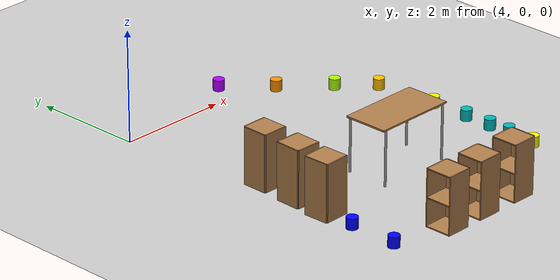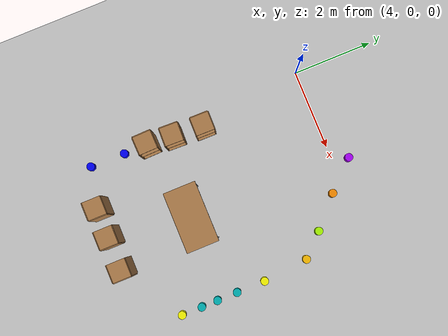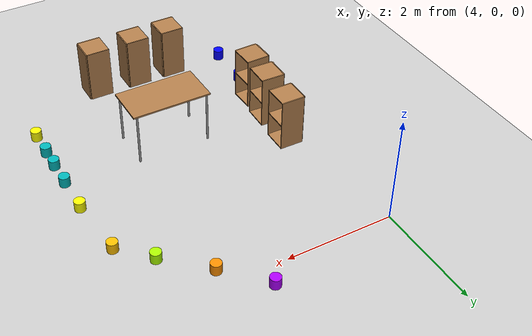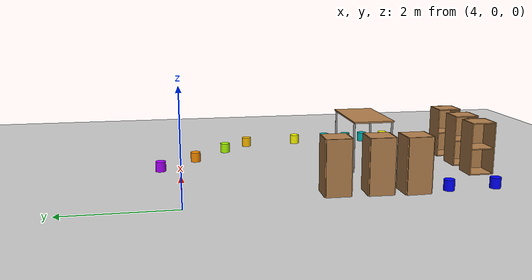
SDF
<sdf version="1.6">
 <world name="default">
  <model name="ground_plane">
   <static>1</static>
   <link name="link">
    <collision name="collision">
     <geometry><plane><normal>0 0 1</normal><size>100 100</size></plane></geometry>
     <surface>
      <contact><collide_bitmask>65535</collide_bitmask></contact>
      <friction><ode><mu>100</mu><mu2>50</mu2></ode></friction>
     </surface>
    </collision>
    <visual name="visual">
     <cast_shadows>0</cast_shadows>
     <geometry><plane><normal>0 0 1</normal><size>100 100</size></plane></geometry>
     <material>
      <script><uri>file://media/materials/scripts/gazebo.material</uri><name>Gazebo/Grey</name></script>
     </material>
    </visual>
   </link>
  </model>
  <model name="cabinet_1">
   <static>1</static>
   <link name="cabinet_bottom_plate">
    <inertial>
     <pose>0 0 -1 0 -0 0</pose>
     <inertia><ixx>2.05</ixx><ixy>0</ixy><ixz>0</ixz><iyy>2.05</iyy><iyz>0</iyz><izz>2.05</izz></inertia>
     <mass>25</mass>
    </inertial>
    <collision name="cabinet_bottom_plate_geom">
     <pose>0 0 0.01 0 -0 0</pose>
     <geometry><box><size>0.45 0.45 0.02</size></box></geometry>
    </collision>
    <visual name="cabinet_bottom_plate_geom_visual">
     <pose>0 0 0.01 0 -0 0</pose>
     <geometry><box><size>0.45 0.45 0.02</size></box></geometry>
     <material>
      <script><uri>file://media/materials/scripts/gazebo.material</uri><name>Gazebo/Wood</name></script>
     </material>
    </visual>
    <collision name="cabinet_bottom_plate_geom_cabinet_back_plate">
     <pose>0.235 0 0.51 0 -0 0</pose>
     <geometry><box><size>0.02 0.45 1.02</size></box></geometry>
    </collision>
    <visual name="cabinet_bottom_plate_geom_cabinet_back_plate_visual">
     <pose>0.235 0 0.51 0 -0 0</pose>
     <geometry><box><size>0.02 0.45 1.02</size></box></geometry>
     <material>
      <script><uri>file://media/materials/scripts/gazebo.material</uri><name>Gazebo/Wood</name></script>
     </material>
    </visual>
    <collision name="cabinet_bottom_plate_geom_cabinet_left_plate">
     <pose>0 0.235 0.51 0 -0 0</pose>
     <geometry><box><size>0.45 0.02 1.02</size></box></geometry>
    </collision>
    <visual name="cabinet_bottom_plate_geom_cabinet_left_plate_visual">
     <pose>0 0.235 0.51 0 -0 0</pose>
     <geometry><box><size>0.45 0.02 1.02</size></box></geometry>
     <material>
      <script><uri>file://media/materials/scripts/gazebo.material</uri><name>Gazebo/Wood</name></script>
     </material>
    </visual>
    <collision name="cabinet_bottom_plate_geom_cabinet_middle_plate">
     <pose>0 0 0.51 0 -0 0</pose>
     <geometry><box><size>0.45 0.45 0.02</size></box></geometry>
    </collision>
    <visual name="cabinet_bottom_plate_geom_cabinet_middle_plate_visual">
     <pose>0 0 0.51 0 -0 0</pose>
     <geometry><box><size>0.45 0.45 0.02</size></box></geometry>
     <material>
      <script><uri>file://media/materials/scripts/gazebo.material</uri><name>Gazebo/Wood</name></script>
     </material>
    </visual>
    <collision name="cabinet_bottom_plate_geom_cabinet_right_plate">
     <pose>0 -0.235 0.51 0 -0 0</pose>
     <geometry><box><size>0.45 0.02 1.02</size></box></geometry>
    </collision>
    <visual name="cabinet_bottom_plate_geom_cabinet_right_plate_visual">
     <pose>0 -0.235 0.51 0 -0 0</pose>
     <geometry><box><size>0.45 0.02 1.02</size></box></geometry>
     <material>
      <script><uri>file://media/materials/scripts/gazebo.material</uri><name>Gazebo/Wood</name></script>
     </material>
    </visual>
    <collision name="cabinet_bottom_plate_geom_cabinet_top_plate">
     <pose>0 0 1.01 0 -0 0</pose>
     <geometry><box><size>0.45 0.45 0.02</size></box></geometry>
    </collision>
    <visual name="cabinet_bottom_plate_geom_cabinet_top_plate_visual">
     <pose>0 0 1.01 0 -0 0</pose>
     <geometry><box><size>0.45 0.45 0.02</size></box></geometry>
     <material>
      <script><uri>file://media/materials/scripts/gazebo.material</uri><name>Gazebo/Wood</name></script>
     </material>
    </visual>
   </link>
   <pose>6.0489 -5.7218 0 0 -0 0</pose>
  </model>
  <model name="cabinet_2">
   <static>1</static>
   <link name="cabinet_bottom_plate">
    <inertial>
     <pose>0 0 -1 0 -0 0</pose>
     <inertia><ixx>2.05</ixx><ixy>0</ixy><ixz>0</ixz><iyy>2.05</iyy><iyz>0</iyz><izz>2.05</izz></inertia>
     <mass>25</mass>
    </inertial>
    <collision name="cabinet_bottom_plate_geom">
     <pose>0 0 0.01 0 -0 0</pose>
     <geometry><box><size>0.45 0.45 0.02</size></box></geometry>
    </collision>
    <visual name="cabinet_bottom_plate_geom_visual">
     <pose>0 0 0.01 0 -0 0</pose>
     <geometry><box><size>0.45 0.45 0.02</size></box></geometry>
     <material>
      <script><uri>file://media/materials/scripts/gazebo.material</uri><name>Gazebo/Wood</name></script>
     </material>
    </visual>
    <collision name="cabinet_bottom_plate_geom_cabinet_back_plate">
     <pose>0.235 0 0.51 0 -0 0</pose>
     <geometry><box><size>0.02 0.45 1.02</size></box></geometry>
    </collision>
    <visual name="cabinet_bottom_plate_geom_cabinet_back_plate_visual">
     <pose>0.235 0 0.51 0 -0 0</pose>
     <geometry><box><size>0.02 0.45 1.02</size></box></geometry>
     <material>
      <script><uri>file://media/materials/scripts/gazebo.material</uri><name>Gazebo/Wood</name></script>
     </material>
    </visual>
    <collision name="cabinet_bottom_plate_geom_cabinet_left_plate">
     <pose>0 0.235 0.51 0 -0 0</pose>
     <geometry><box><size>0.45 0.02 1.02</size></box></geometry>
    </collision>
    <visual name="cabinet_bottom_plate_geom_cabinet_left_plate_visual">
     <pose>0 0.235 0.51 0 -0 0</pose>
     <geometry><box><size>0.45 0.02 1.02</size></box></geometry>
     <material>
      <script><uri>file://media/materials/scripts/gazebo.material</uri><name>Gazebo/Wood</name></script>
     </material>
    </visual>
    <collision name="cabinet_bottom_plate_geom_cabinet_middle_plate">
     <pose>0 0 0.51 0 -0 0</pose>
     <geometry><box><size>0.45 0.45 0.02</size></box></geometry>
    </collision>
    <visual name="cabinet_bottom_plate_geom_cabinet_middle_plate_visual">
     <pose>0 0 0.51 0 -0 0</pose>
     <geometry><box><size>0.45 0.45 0.02</size></box></geometry>
     <material>
      <script><uri>file://media/materials/scripts/gazebo.material</uri><name>Gazebo/Wood</name></script>
     </material>
    </visual>
    <collision name="cabinet_bottom_plate_geom_cabinet_right_plate">
     <pose>0 -0.235 0.51 0 -0 0</pose>
     <geometry><box><size>0.45 0.02 1.02</size></box></geometry>
    </collision>
    <visual name="cabinet_bottom_plate_geom_cabinet_right_plate_visual">
     <pose>0 -0.235 0.51 0 -0 0</pose>
     <geometry><box><size>0.45 0.02 1.02</size></box></geometry>
     <material>
      <script><uri>file://media/materials/scripts/gazebo.material</uri><name>Gazebo/Wood</name></script>
     </material>
    </visual>
    <collision name="cabinet_bottom_plate_geom_cabinet_top_plate">
     <pose>0 0 1.01 0 -0 0</pose>
     <geometry><box><size>0.45 0.45 0.02</size></box></geometry>
    </collision>
    <visual name="cabinet_bottom_plate_geom_cabinet_top_plate_visual">
     <pose>0 0 1.01 0 -0 0</pose>
     <geometry><box><size>0.45 0.45 0.02</size></box></geometry>
     <material>
      <script><uri>file://media/materials/scripts/gazebo.material</uri><name>Gazebo/Wood</name></script>
     </material>
    </visual>
   </link>
   <pose>6.87126 -5.72446 0 0 -0 0</pose>
  </model>
  <model name="cabinet_3">
   <static>1</static>
   <link name="cabinet_bottom_plate">
    <inertial>
     <pose>0 0 -1 0 -0 0</pose>
     <inertia><ixx>2.05</ixx><ixy>0</ixy><ixz>0</ixz><iyy>2.05</iyy><iyz>0</iyz><izz>2.05</izz></inertia>
     <mass>25</mass>
    </inertial>
    <collision name="cabinet_bottom_plate_geom">
     <pose>0 0 0.01 0 -0 0</pose>
     <geometry><box><size>0.45 0.45 0.02</size></box></geometry>
    </collision>
    <visual name="cabinet_bottom_plate_geom_visual">
     <pose>0 0 0.01 0 -0 0</pose>
     <geometry><box><size>0.45 0.45 0.02</size></box></geometry>
     <material>
      <script><uri>file://media/materials/scripts/gazebo.material</uri><name>Gazebo/Wood</name></script>
     </material>
    </visual>
    <collision name="cabinet_bottom_plate_geom_cabinet_back_plate">
     <pose>0.235 0 0.51 0 -0 0</pose>
     <geometry><box><size>0.02 0.45 1.02</size></box></geometry>
    </collision>
    <visual name="cabinet_bottom_plate_geom_cabinet_back_plate_visual">
     <pose>0.235 0 0.51 0 -0 0</pose>
     <geometry><box><size>0.02 0.45 1.02</size></box></geometry>
     <material>
      <script><uri>file://media/materials/scripts/gazebo.material</uri><name>Gazebo/Wood</name></script>
     </material>
    </visual>
    <collision name="cabinet_bottom_plate_geom_cabinet_left_plate">
     <pose>0 0.235 0.51 0 -0 0</pose>
     <geometry><box><size>0.45 0.02 1.02</size></box></geometry>
    </collision>
    <visual name="cabinet_bottom_plate_geom_cabinet_left_plate_visual">
     <pose>0 0.235 0.51 0 -0 0</pose>
     <geometry><box><size>0.45 0.02 1.02</size></box></geometry>
     <material>
      <script><uri>file://media/materials/scripts/gazebo.material</uri><name>Gazebo/Wood</name></script>
     </material>
    </visual>
    <collision name="cabinet_bottom_plate_geom_cabinet_middle_plate">
     <pose>0 0 0.51 0 -0 0</pose>
     <geometry><box><size>0.45 0.45 0.02</size></box></geometry>
    </collision>
    <visual name="cabinet_bottom_plate_geom_cabinet_middle_plate_visual">
     <pose>0 0 0.51 0 -0 0</pose>
     <geometry><box><size>0.45 0.45 0.02</size></box></geometry>
     <material>
      <script><uri>file://media/materials/scripts/gazebo.material</uri><name>Gazebo/Wood</name></script>
     </material>
    </visual>
    <collision name="cabinet_bottom_plate_geom_cabinet_right_plate">
     <pose>0 -0.235 0.51 0 -0 0</pose>
     <geometry><box><size>0.45 0.02 1.02</size></box></geometry>
    </collision>
    <visual name="cabinet_bottom_plate_geom_cabinet_right_plate_visual">
     <pose>0 -0.235 0.51 0 -0 0</pose>
     <geometry><box><size>0.45 0.02 1.02</size></box></geometry>
     <material>
      <script><uri>file://media/materials/scripts/gazebo.material</uri><name>Gazebo/Wood</name></script>
     </material>
    </visual>
    <collision name="cabinet_bottom_plate_geom_cabinet_top_plate">
     <pose>0 0 1.01 0 -0 0</pose>
     <geometry><box><size>0.45 0.45 0.02</size></box></geometry>
    </collision>
    <visual name="cabinet_bottom_plate_geom_cabinet_top_plate_visual">
     <pose>0 0 1.01 0 -0 0</pose>
     <geometry><box><size>0.45 0.45 0.02</size></box></geometry>
     <material>
      <script><uri>file://media/materials/scripts/gazebo.material</uri><name>Gazebo/Wood</name></script>
     </material>
    </visual>
   </link>
   <pose>5.31292 -5.71989 0 0 -0 0</pose>
  </model>
  <model name="cylinder_v">
   <link name="link_0">
    <pose>0 0 0.1 0 -0 0</pose>
    <inertial>
     <mass>1</mass>
     <inertia><ixx>0.145833</ixx><ixy>0</ixy><ixz>0</ixz><iyy>0.145833</iyy><iyz>0</iyz><izz>0.125</izz></inertia>
    </inertial>
    <visual name="visual">
     <geometry><cylinder><radius>0.1</radius><length>0.2</length></cylinder></geometry>
     <material>
      <lighting>1</lighting>
      <script><uri>file://media/materials/scripts/gazebo.material</uri><name>Gazebo/Grey</name></script>
      <ambient>0.682 0 1 1</ambient>
      <diffuse>0.682 0 1 1</diffuse>
      <specular>0 0 0 1</specular>
      <emissive>0 0 0 1</emissive>
      <shader type="vertex"><normal_map>__default__</normal_map></shader>
     </material>
    </visual>
    <collision name="collision">
     <geometry><cylinder><radius>0.1</radius><length>0.2</length></cylinder></geometry>
     <surface>
      <friction>
       <ode><mu>1</mu><mu2>1</mu2><fdir1>0 0 0</fdir1><slip1>0</slip1><slip2>0</slip2></ode>
       <torsional>
        <coefficient>1</coefficient>
        <patch_radius>0</patch_radius>
        <surface_radius>0</surface_radius>
        <use_patch_radius>1</use_patch_radius>
        <ode><slip>0</slip></ode>
       </torsional>
      </friction>
      <bounce><restitution_coefficient>0</restitution_coefficient><threshold>1e+06</threshold></bounce>
      <contact>
       <collide_without_contact>0</collide_without_contact>
       <collide_without_contact_bitmask>1</collide_without_contact_bitmask>
       <collide_bitmask>1</collide_bitmask>
       <ode>
        <soft_cfm>0</soft_cfm>
        <soft_erp>0.2</soft_erp>
        <kp>1e+13</kp>
        <kd>1</kd>
        <max_vel>0.01</max_vel>
        <min_depth>0</min_depth>
       </ode>
       <bullet>
        <split_impulse>1</split_impulse>
        <split_impulse_penetration_threshold>-0.01</split_impulse_penetration_threshold>
        <soft_cfm>0</soft_cfm>
        <soft_erp>0.2</soft_erp>
        <kp>1e+13</kp>
        <kd>1</kd>
       </bullet>
      </contact>
     </surface>
    </collision>
   </link>
   <static>1</static>
   <pose>6.45702 0.38024 0 0 -0 0</pose>
  </model>
  <model name="cylinder_bg">
   <link name="link_0">
    <pose>0 0 0.1 0 -0 0</pose>
    <inertial>
     <mass>1</mass>
     <inertia><ixx>0.145833</ixx><ixy>0</ixy><ixz>0</ixz><iyy>0.145833</iyy><iyz>0</iyz><izz>0.125</izz></inertia>
    </inertial>
    <visual name="visual">
     <geometry><cylinder><radius>0.1</radius><length>0.2</length></cylinder></geometry>
     <material>
      <lighting>1</lighting>
      <script><uri>file://media/materials/scripts/gazebo.material</uri><name>Gazebo/Grey</name></script>
      <ambient>0 0.71 0.722 1</ambient>
      <diffuse>0 0.71 0.722 1</diffuse>
      <specular>0 0 0 1</specular>
      <emissive>0 0 0 1</emissive>
      <shader type="vertex"><normal_map>__default__</normal_map></shader>
     </material>
    </visual>
    <collision name="collision">
     <geometry><cylinder><radius>0.1</radius><length>0.2</length></cylinder></geometry>
     <surface>
      <friction>
       <ode><mu>1</mu><mu2>1</mu2><fdir1>0 0 0</fdir1><slip1>0</slip1><slip2>0</slip2></ode>
       <torsional>
        <coefficient>1</coefficient>
        <patch_radius>0</patch_radius>
        <surface_radius>0</surface_radius>
        <use_patch_radius>1</use_patch_radius>
        <ode><slip>0</slip></ode>
       </torsional>
      </friction>
      <bounce><restitution_coefficient>0</restitution_coefficient><threshold>1e+06</threshold></bounce>
      <contact>
       <collide_without_contact>0</collide_without_contact>
       <collide_without_contact_bitmask>1</collide_without_contact_bitmask>
       <collide_bitmask>1</collide_bitmask>
       <ode>
        <soft_cfm>0</soft_cfm>
        <soft_erp>0.2</soft_erp>
        <kp>1e+13</kp>
        <kd>1</kd>
        <max_vel>0.01</max_vel>
        <min_depth>0</min_depth>
       </ode>
       <bullet>
        <split_impulse>1</split_impulse>
        <split_impulse_penetration_threshold>-0.01</split_impulse_penetration_threshold>
        <soft_cfm>0</soft_cfm>
        <soft_erp>0.2</soft_erp>
        <kp>1e+13</kp>
        <kd>1</kd>
       </bullet>
      </contact>
     </surface>
    </collision>
   </link>
   <static>1</static>
   <pose>8.45089 -4.33145 0 0 -0 0</pose>
  </model>
  <model name="cylinder_bg_0">
   <link name="link_0">
    <pose>0 0 0.1 0 -0 0</pose>
    <inertial>
     <mass>1</mass>
     <inertia><ixx>0.145833</ixx><ixy>0</ixy><ixz>0</ixz><iyy>0.145833</iyy><iyz>0</iyz><izz>0.125</izz></inertia>
    </inertial>
    <visual name="visual">
     <geometry><cylinder><radius>0.1</radius><length>0.2</length></cylinder></geometry>
     <material>
      <lighting>1</lighting>
      <script><uri>file://media/materials/scripts/gazebo.material</uri><name>Gazebo/Grey</name></script>
      <ambient>0 0.71 0.722 1</ambient>
      <diffuse>0 0.71 0.722 1</diffuse>
      <specular>0 0 0 1</specular>
      <emissive>0 0 0 1</emissive>
      <shader type="vertex"><normal_map>__default__</normal_map></shader>
     </material>
    </visual>
    <collision name="collision">
     <geometry><cylinder><radius>0.1</radius><length>0.2</length></cylinder></geometry>
     <surface>
      <friction>
       <ode><mu>1</mu><mu2>1</mu2><fdir1>0 0 0</fdir1><slip1>0</slip1><slip2>0</slip2></ode>
       <torsional>
        <coefficient>1</coefficient>
        <patch_radius>0</patch_radius>
        <surface_radius>0</surface_radius>
        <use_patch_radius>1</use_patch_radius>
        <ode><slip>0</slip></ode>
       </torsional>
      </friction>
      <bounce><restitution_coefficient>0</restitution_coefficient><threshold>1e+06</threshold></bounce>
      <contact>
       <collide_without_contact>0</collide_without_contact>
       <collide_without_contact_bitmask>1</collide_without_contact_bitmask>
       <collide_bitmask>1</collide_bitmask>
       <ode>
        <soft_cfm>0</soft_cfm>
        <soft_erp>0.2</soft_erp>
        <kp>1e+13</kp>
        <kd>1</kd>
        <max_vel>0.01</max_vel>
        <min_depth>0</min_depth>
       </ode>
       <bullet>
        <split_impulse>1</split_impulse>
        <split_impulse_penetration_threshold>-0.01</split_impulse_penetration_threshold>
        <soft_cfm>0</soft_cfm>
        <soft_erp>0.2</soft_erp>
        <kp>1e+13</kp>
        <kd>1</kd>
       </bullet>
      </contact>
     </surface>
    </collision>
   </link>
   <static>1</static>
   <pose>8.45232 -3.92067 0 0 -0 0</pose>
  </model>
  <model name="cylinder_bg_1">
   <link name="link_0">
    <pose>0 0 0.1 0 -0 0</pose>
    <inertial>
     <mass>1</mass>
     <inertia><ixx>0.145833</ixx><ixy>0</ixy><ixz>0</ixz><iyy>0.145833</iyy><iyz>0</iyz><izz>0.125</izz></inertia>
    </inertial>
    <visual name="visual">
     <geometry><cylinder><radius>0.1</radius><length>0.2</length></cylinder></geometry>
     <material>
      <lighting>1</lighting>
      <script><uri>file://media/materials/scripts/gazebo.material</uri><name>Gazebo/Grey</name></script>
      <ambient>0 0.71 0.722 1</ambient>
      <diffuse>0 0.71 0.722 1</diffuse>
      <specular>0 0 0 1</specular>
      <emissive>0 0 0 1</emissive>
      <shader type="vertex"><normal_map>__default__</normal_map></shader>
     </material>
    </visual>
    <collision name="collision">
     <geometry><cylinder><radius>0.1</radius><length>0.2</length></cylinder></geometry>
     <surface>
      <friction>
       <ode><mu>1</mu><mu2>1</mu2><fdir1>0 0 0</fdir1><slip1>0</slip1><slip2>0</slip2></ode>
       <torsional>
        <coefficient>1</coefficient>
        <patch_radius>0</patch_radius>
        <surface_radius>0</surface_radius>
        <use_patch_radius>1</use_patch_radius>
        <ode><slip>0</slip></ode>
       </torsional>
      </friction>
      <bounce><restitution_coefficient>0</restitution_coefficient><threshold>1e+06</threshold></bounce>
      <contact>
       <collide_without_contact>0</collide_without_contact>
       <collide_without_contact_bitmask>1</collide_without_contact_bitmask>
       <collide_bitmask>1</collide_bitmask>
       <ode>
        <soft_cfm>0</soft_cfm>
        <soft_erp>0.2</soft_erp>
        <kp>1e+13</kp>
        <kd>1</kd>
        <max_vel>0.01</max_vel>
        <min_depth>0</min_depth>
       </ode>
       <bullet>
        <split_impulse>1</split_impulse>
        <split_impulse_penetration_threshold>-0.01</split_impulse_penetration_threshold>
        <soft_cfm>0</soft_cfm>
        <soft_erp>0.2</soft_erp>
        <kp>1e+13</kp>
        <kd>1</kd>
       </bullet>
      </contact>
     </surface>
    </collision>
   </link>
   <static>1</static>
   <pose>8.45376 -3.40691 0 0 -0 0</pose>
  </model>
  <model name="cylinder_y_2">
   <link name="link_0">
    <pose>0 0 0.1 0 -0 0</pose>
    <inertial>
     <mass>1</mass>
     <inertia><ixx>0.145833</ixx><ixy>0</ixy><ixz>0</ixz><iyy>0.145833</iyy><iyz>0</iyz><izz>0.125</izz></inertia>
    </inertial>
    <visual name="visual">
     <geometry><cylinder><radius>0.1</radius><length>0.2</length></cylinder></geometry>
     <material>
      <lighting>1</lighting>
      <script><uri>file://media/materials/scripts/gazebo.material</uri><name>Gazebo/Grey</name></script>
      <ambient>1 1 0 1</ambient>
      <diffuse>1 1 0 1</diffuse>
      <specular>0 0 0 1</specular>
      <emissive>0 0 0 1</emissive>
      <shader type="vertex"><normal_map>__default__</normal_map></shader>
     </material>
    </visual>
    <collision name="collision">
     <geometry><cylinder><radius>0.1</radius><length>0.2</length></cylinder></geometry>
     <surface>
      <friction>
       <ode><mu>1</mu><mu2>1</mu2><fdir1>0 0 0</fdir1><slip1>0</slip1><slip2>0</slip2></ode>
       <torsional>
        <coefficient>1</coefficient>
        <patch_radius>0</patch_radius>
        <surface_radius>0</surface_radius>
        <use_patch_radius>1</use_patch_radius>
        <ode><slip>0</slip></ode>
       </torsional>
      </friction>
      <bounce><restitution_coefficient>0</restitution_coefficient><threshold>1e+06</threshold></bounce>
      <contact>
       <collide_without_contact>0</collide_without_contact>
       <collide_without_contact_bitmask>1</collide_without_contact_bitmask>
       <collide_bitmask>1</collide_bitmask>
       <ode>
        <soft_cfm>0</soft_cfm>
        <soft_erp>0.2</soft_erp>
        <kp>1e+13</kp>
        <kd>1</kd>
        <max_vel>0.01</max_vel>
        <min_depth>0</min_depth>
       </ode>
       <bullet>
        <split_impulse>1</split_impulse>
        <split_impulse_penetration_threshold>-0.01</split_impulse_penetration_threshold>
        <soft_cfm>0</soft_cfm>
        <soft_erp>0.2</soft_erp>
        <kp>1e+13</kp>
        <kd>1</kd>
       </bullet>
      </contact>
     </surface>
    </collision>
   </link>
   <static>1</static>
   <pose>8.45575 -2.6873 0 0 -0 0</pose>
  </model>
  <model name="cylinder_y_3">
   <link name="link_0">
    <pose>0 0 0.1 0 -0 0</pose>
    <inertial>
     <mass>1</mass>
     <inertia><ixx>0.145833</ixx><ixy>0</ixy><ixz>0</ixz><iyy>0.145833</iyy><iyz>0</iyz><izz>0.125</izz></inertia>
    </inertial>
    <visual name="visual">
     <geometry><cylinder><radius>0.1</radius><length>0.2</length></cylinder></geometry>
     <material>
      <lighting>1</lighting>
      <script><uri>file://media/materials/scripts/gazebo.material</uri><name>Gazebo/Grey</name></script>
      <ambient>1 1 0 1</ambient>
      <diffuse>1 1 0 1</diffuse>
      <specular>0 0 0 1</specular>
      <emissive>0 0 0 1</emissive>
      <shader type="vertex"><normal_map>__default__</normal_map></shader>
     </material>
    </visual>
    <collision name="collision">
     <geometry><cylinder><radius>0.1</radius><length>0.2</length></cylinder></geometry>
     <surface>
      <friction>
       <ode><mu>1</mu><mu2>1</mu2><fdir1>0 0 0</fdir1><slip1>0</slip1><slip2>0</slip2></ode>
       <torsional>
        <coefficient>1</coefficient>
        <patch_radius>0</patch_radius>
        <surface_radius>0</surface_radius>
        <use_patch_radius>1</use_patch_radius>
        <ode><slip>0</slip></ode>
       </torsional>
      </friction>
      <bounce><restitution_coefficient>0</restitution_coefficient><threshold>1e+06</threshold></bounce>
      <contact>
       <collide_without_contact>0</collide_without_contact>
       <collide_without_contact_bitmask>1</collide_without_contact_bitmask>
       <collide_bitmask>1</collide_bitmask>
       <ode>
        <soft_cfm>0</soft_cfm>
        <soft_erp>0.2</soft_erp>
        <kp>1e+13</kp>
        <kd>1</kd>
        <max_vel>0.01</max_vel>
        <min_depth>0</min_depth>
       </ode>
       <bullet>
        <split_impulse>1</split_impulse>
        <split_impulse_penetration_threshold>-0.01</split_impulse_penetration_threshold>
        <soft_cfm>0</soft_cfm>
        <soft_erp>0.2</soft_erp>
        <kp>1e+13</kp>
        <kd>1</kd>
       </bullet>
      </contact>
     </surface>
    </collision>
   </link>
   <static>1</static>
   <pose>8.4491 -4.84523 0 0 -0 0</pose>
  </model>
  <model name="cabinet_4">
   <static>1</static>
   <link name="cabinet_bottom_plate">
    <inertial>
     <pose>0 0 -1 0 -0 0</pose>
     <inertia><ixx>2.05</ixx><ixy>0</ixy><ixz>0</ixz><iyy>2.05</iyy><iyz>0</iyz><izz>2.05</izz></inertia>
     <mass>25</mass>
    </inertial>
    <collision name="cabinet_bottom_plate_geom">
     <pose>0 0 0.01 0 -0 0</pose>
     <geometry><box><size>0.45 0.45 0.02</size></box></geometry>
    </collision>
    <visual name="cabinet_bottom_plate_geom_visual">
     <pose>0 0 0.01 0 -0 0</pose>
     <geometry><box><size>0.45 0.45 0.02</size></box></geometry>
     <material>
      <script><uri>file://media/materials/scripts/gazebo.material</uri><name>Gazebo/Wood</name></script>
     </material>
    </visual>
    <collision name="cabinet_bottom_plate_geom_cabinet_back_plate">
     <pose>0.235 0 0.51 0 -0 0</pose>
     <geometry><box><size>0.02 0.45 1.02</size></box></geometry>
    </collision>
    <visual name="cabinet_bottom_plate_geom_cabinet_back_plate_visual">
     <pose>0.235 0 0.51 0 -0 0</pose>
     <geometry><box><size>0.02 0.45 1.02</size></box></geometry>
     <material>
      <script><uri>file://media/materials/scripts/gazebo.material</uri><name>Gazebo/Wood</name></script>
     </material>
    </visual>
    <collision name="cabinet_bottom_plate_geom_cabinet_left_plate">
     <pose>0 0.235 0.51 0 -0 0</pose>
     <geometry><box><size>0.45 0.02 1.02</size></box></geometry>
    </collision>
    <visual name="cabinet_bottom_plate_geom_cabinet_left_plate_visual">
     <pose>0 0.235 0.51 0 -0 0</pose>
     <geometry><box><size>0.45 0.02 1.02</size></box></geometry>
     <material>
      <script><uri>file://media/materials/scripts/gazebo.material</uri><name>Gazebo/Wood</name></script>
     </material>
    </visual>
    <collision name="cabinet_bottom_plate_geom_cabinet_middle_plate">
     <pose>0 0 0.51 0 -0 0</pose>
     <geometry><box><size>0.45 0.45 0.02</size></box></geometry>
    </collision>
    <visual name="cabinet_bottom_plate_geom_cabinet_middle_plate_visual">
     <pose>0 0 0.51 0 -0 0</pose>
     <geometry><box><size>0.45 0.45 0.02</size></box></geometry>
     <material>
      <script><uri>file://media/materials/scripts/gazebo.material</uri><name>Gazebo/Wood</name></script>
     </material>
    </visual>
    <collision name="cabinet_bottom_plate_geom_cabinet_right_plate">
     <pose>0 -0.235 0.51 0 -0 0</pose>
     <geometry><box><size>0.45 0.02 1.02</size></box></geometry>
    </collision>
    <visual name="cabinet_bottom_plate_geom_cabinet_right_plate_visual">
     <pose>0 -0.235 0.51 0 -0 0</pose>
     <geometry><box><size>0.45 0.02 1.02</size></box></geometry>
     <material>
      <script><uri>file://media/materials/scripts/gazebo.material</uri><name>Gazebo/Wood</name></script>
     </material>
    </visual>
    <collision name="cabinet_bottom_plate_geom_cabinet_top_plate">
     <pose>0 0 1.01 0 -0 0</pose>
     <geometry><box><size>0.45 0.45 0.02</size></box></geometry>
    </collision>
    <visual name="cabinet_bottom_plate_geom_cabinet_top_plate_visual">
     <pose>0 0 1.01 0 -0 0</pose>
     <geometry><box><size>0.45 0.45 0.02</size></box></geometry>
     <material>
      <script><uri>file://media/materials/scripts/gazebo.material</uri><name>Gazebo/Wood</name></script>
     </material>
    </visual>
   </link>
   <pose>4.33965 -4.05375 0 0 0 -3.11968</pose>
  </model>
  <model name="cabinet_5">
   <static>1</static>
   <link name="cabinet_bottom_plate">
    <inertial>
     <pose>0 0 -1 0 -0 0</pose>
     <inertia><ixx>2.05</ixx><ixy>0</ixy><ixz>0</ixz><iyy>2.05</iyy><iyz>0</iyz><izz>2.05</izz></inertia>
     <mass>25</mass>
    </inertial>
    <collision name="cabinet_bottom_plate_geom">
     <pose>0 0 0.01 0 -0 0</pose>
     <geometry><box><size>0.45 0.45 0.02</size></box></geometry>
    </collision>
    <visual name="cabinet_bottom_plate_geom_visual">
     <pose>0 0 0.01 0 -0 0</pose>
     <geometry><box><size>0.45 0.45 0.02</size></box></geometry>
     <material>
      <script><uri>file://media/materials/scripts/gazebo.material</uri><name>Gazebo/Wood</name></script>
     </material>
    </visual>
    <collision name="cabinet_bottom_plate_geom_cabinet_back_plate">
     <pose>0.235 0 0.51 0 -0 0</pose>
     <geometry><box><size>0.02 0.45 1.02</size></box></geometry>
    </collision>
    <visual name="cabinet_bottom_plate_geom_cabinet_back_plate_visual">
     <pose>0.235 0 0.51 0 -0 0</pose>
     <geometry><box><size>0.02 0.45 1.02</size></box></geometry>
     <material>
      <script><uri>file://media/materials/scripts/gazebo.material</uri><name>Gazebo/Wood</name></script>
     </material>
    </visual>
    <collision name="cabinet_bottom_plate_geom_cabinet_left_plate">
     <pose>0 0.235 0.51 0 -0 0</pose>
     <geometry><box><size>0.45 0.02 1.02</size></box></geometry>
    </collision>
    <visual name="cabinet_bottom_plate_geom_cabinet_left_plate_visual">
     <pose>0 0.235 0.51 0 -0 0</pose>
     <geometry><box><size>0.45 0.02 1.02</size></box></geometry>
     <material>
      <script><uri>file://media/materials/scripts/gazebo.material</uri><name>Gazebo/Wood</name></script>
     </material>
    </visual>
    <collision name="cabinet_bottom_plate_geom_cabinet_middle_plate">
     <pose>0 0 0.51 0 -0 0</pose>
     <geometry><box><size>0.45 0.45 0.02</size></box></geometry>
    </collision>
    <visual name="cabinet_bottom_plate_geom_cabinet_middle_plate_visual">
     <pose>0 0 0.51 0 -0 0</pose>
     <geometry><box><size>0.45 0.45 0.02</size></box></geometry>
     <material>
      <script><uri>file://media/materials/scripts/gazebo.material</uri><name>Gazebo/Wood</name></script>
     </material>
    </visual>
    <collision name="cabinet_bottom_plate_geom_cabinet_right_plate">
     <pose>0 -0.235 0.51 0 -0 0</pose>
     <geometry><box><size>0.45 0.02 1.02</size></box></geometry>
    </collision>
    <visual name="cabinet_bottom_plate_geom_cabinet_right_plate_visual">
     <pose>0 -0.235 0.51 0 -0 0</pose>
     <geometry><box><size>0.45 0.02 1.02</size></box></geometry>
     <material>
      <script><uri>file://media/materials/scripts/gazebo.material</uri><name>Gazebo/Wood</name></script>
     </material>
    </visual>
    <collision name="cabinet_bottom_plate_geom_cabinet_top_plate">
     <pose>0 0 1.01 0 -0 0</pose>
     <geometry><box><size>0.45 0.45 0.02</size></box></geometry>
    </collision>
    <visual name="cabinet_bottom_plate_geom_cabinet_top_plate_visual">
     <pose>0 0 1.01 0 -0 0</pose>
     <geometry><box><size>0.45 0.45 0.02</size></box></geometry>
     <material>
      <script><uri>file://media/materials/scripts/gazebo.material</uri><name>Gazebo/Wood</name></script>
     </material>
    </visual>
   </link>
   <pose>4.39263 -3.40608 0 0 -0 3.11048</pose>
  </model>
  <model name="cabinet_6">
   <static>1</static>
   <link name="cabinet_bottom_plate">
    <inertial>
     <pose>0 0 -1 0 -0 0</pose>
     <inertia><ixx>2.05</ixx><ixy>0</ixy><ixz>0</ixz><iyy>2.05</iyy><iyz>0</iyz><izz>2.05</izz></inertia>
     <mass>25</mass>
    </inertial>
    <collision name="cabinet_bottom_plate_geom">
     <pose>0 0 0.01 0 -0 0</pose>
     <geometry><box><size>0.45 0.45 0.02</size></box></geometry>
    </collision>
    <visual name="cabinet_bottom_plate_geom_visual">
     <pose>0 0 0.01 0 -0 0</pose>
     <geometry><box><size>0.45 0.45 0.02</size></box></geometry>
     <material>
      <script><uri>file://media/materials/scripts/gazebo.material</uri><name>Gazebo/Wood</name></script>
     </material>
    </visual>
    <collision name="cabinet_bottom_plate_geom_cabinet_back_plate">
     <pose>0.235 0 0.51 0 -0 0</pose>
     <geometry><box><size>0.02 0.45 1.02</size></box></geometry>
    </collision>
    <visual name="cabinet_bottom_plate_geom_cabinet_back_plate_visual">
     <pose>0.235 0 0.51 0 -0 0</pose>
     <geometry><box><size>0.02 0.45 1.02</size></box></geometry>
     <material>
      <script><uri>file://media/materials/scripts/gazebo.material</uri><name>Gazebo/Wood</name></script>
     </material>
    </visual>
    <collision name="cabinet_bottom_plate_geom_cabinet_left_plate">
     <pose>0 0.235 0.51 0 -0 0</pose>
     <geometry><box><size>0.45 0.02 1.02</size></box></geometry>
    </collision>
    <visual name="cabinet_bottom_plate_geom_cabinet_left_plate_visual">
     <pose>0 0.235 0.51 0 -0 0</pose>
     <geometry><box><size>0.45 0.02 1.02</size></box></geometry>
     <material>
      <script><uri>file://media/materials/scripts/gazebo.material</uri><name>Gazebo/Wood</name></script>
     </material>
    </visual>
    <collision name="cabinet_bottom_plate_geom_cabinet_middle_plate">
     <pose>0 0 0.51 0 -0 0</pose>
     <geometry><box><size>0.45 0.45 0.02</size></box></geometry>
    </collision>
    <visual name="cabinet_bottom_plate_geom_cabinet_middle_plate_visual">
     <pose>0 0 0.51 0 -0 0</pose>
     <geometry><box><size>0.45 0.45 0.02</size></box></geometry>
     <material>
      <script><uri>file://media/materials/scripts/gazebo.material</uri><name>Gazebo/Wood</name></script>
     </material>
    </visual>
    <collision name="cabinet_bottom_plate_geom_cabinet_right_plate">
     <pose>0 -0.235 0.51 0 -0 0</pose>
     <geometry><box><size>0.45 0.02 1.02</size></box></geometry>
    </collision>
    <visual name="cabinet_bottom_plate_geom_cabinet_right_plate_visual">
     <pose>0 -0.235 0.51 0 -0 0</pose>
     <geometry><box><size>0.45 0.02 1.02</size></box></geometry>
     <material>
      <script><uri>file://media/materials/scripts/gazebo.material</uri><name>Gazebo/Wood</name></script>
     </material>
    </visual>
    <collision name="cabinet_bottom_plate_geom_cabinet_top_plate">
     <pose>0 0 1.01 0 -0 0</pose>
     <geometry><box><size>0.45 0.45 0.02</size></box></geometry>
    </collision>
    <visual name="cabinet_bottom_plate_geom_cabinet_top_plate_visual">
     <pose>0 0 1.01 0 -0 0</pose>
     <geometry><box><size>0.45 0.45 0.02</size></box></geometry>
     <material>
      <script><uri>file://media/materials/scripts/gazebo.material</uri><name>Gazebo/Wood</name></script>
     </material>
    </visual>
   </link>
   <pose>4.43677 -2.64319 0 0 -0 3.12805</pose>
  </model>
  <model name="cylinder_b_10">
   <link name="link_0">
    <pose>0 0 0.1 0 -0 0</pose>
    <inertial>
     <mass>1</mass>
     <inertia><ixx>0.145833</ixx><ixy>0</ixy><ixz>0</ixz><iyy>0.145833</iyy><iyz>0</iyz><izz>0.125</izz></inertia>
    </inertial>
    <visual name="visual">
     <geometry><cylinder><radius>0.1</radius><length>0.2</length></cylinder></geometry>
     <material>
      <lighting>1</lighting>
      <script><uri>file://media/materials/scripts/gazebo.material</uri><name>Gazebo/Grey</name></script>
      <ambient>0 0 1 1</ambient>
      <diffuse>0 0 1 1</diffuse>
      <specular>0 0 0 1</specular>
      <emissive>0 0 0 1</emissive>
      <shader type="vertex"><normal_map>__default__</normal_map></shader>
     </material>
    </visual>
    <collision name="collision">
     <geometry><cylinder><radius>0.1</radius><length>0.2</length></cylinder></geometry>
     <surface>
      <friction>
       <ode><mu>1</mu><mu2>1</mu2><fdir1>0 0 0</fdir1><slip1>0</slip1><slip2>0</slip2></ode>
       <torsional>
        <coefficient>1</coefficient>
        <patch_radius>0</patch_radius>
        <surface_radius>0</surface_radius>
        <use_patch_radius>1</use_patch_radius>
        <ode><slip>0</slip></ode>
       </torsional>
      </friction>
      <bounce><restitution_coefficient>0</restitution_coefficient><threshold>1e+06</threshold></bounce>
      <contact>
       <collide_without_contact>0</collide_without_contact>
       <collide_without_contact_bitmask>1</collide_without_contact_bitmask>
       <collide_bitmask>1</collide_bitmask>
       <ode>
        <soft_cfm>0</soft_cfm>
        <soft_erp>0.2</soft_erp>
        <kp>1e+13</kp>
        <kd>1</kd>
        <max_vel>0.01</max_vel>
        <min_depth>0</min_depth>
       </ode>
       <bullet>
        <split_impulse>1</split_impulse>
        <split_impulse_penetration_threshold>-0.01</split_impulse_penetration_threshold>
        <soft_cfm>0</soft_cfm>
        <soft_erp>0.2</soft_erp>
        <kp>1e+13</kp>
        <kd>1</kd>
       </bullet>
      </contact>
     </surface>
    </collision>
   </link>
   <static>1</static>
   <pose>4.26754 -4.68146 0 0 -0 0</pose>
  </model>
  <model name="cylinder_b_11">
   <link name="link_0">
    <pose>0 0 0.1 0 -0 0</pose>
    <inertial>
     <mass>1</mass>
     <inertia><ixx>0.145833</ixx><ixy>0</ixy><ixz>0</ixz><iyy>0.145833</iyy><iyz>0</iyz><izz>0.125</izz></inertia>
    </inertial>
    <visual name="visual">
     <geometry><cylinder><radius>0.1</radius><length>0.2</length></cylinder></geometry>
     <material>
      <lighting>1</lighting>
      <script><uri>file://media/materials/scripts/gazebo.material</uri><name>Gazebo/Grey</name></script>
      <ambient>0 0 1 1</ambient>
      <diffuse>0 0 1 1</diffuse>
      <specular>0 0 0 1</specular>
      <emissive>0 0 0 1</emissive>
      <shader type="vertex"><normal_map>__default__</normal_map></shader>
     </material>
    </visual>
    <collision name="collision">
     <geometry><cylinder><radius>0.1</radius><length>0.2</length></cylinder></geometry>
     <surface>
      <friction>
       <ode><mu>1</mu><mu2>1</mu2><fdir1>0 0 0</fdir1><slip1>0</slip1><slip2>0</slip2></ode>
       <torsional>
        <coefficient>1</coefficient>
        <patch_radius>0</patch_radius>
        <surface_radius>0</surface_radius>
        <use_patch_radius>1</use_patch_radius>
        <ode><slip>0</slip></ode>
       </torsional>
      </friction>
      <bounce><restitution_coefficient>0</restitution_coefficient><threshold>1e+06</threshold></bounce>
      <contact>
       <collide_without_contact>0</collide_without_contact>
       <collide_without_contact_bitmask>1</collide_without_contact_bitmask>
       <collide_bitmask>1</collide_bitmask>
       <ode>
        <soft_cfm>0</soft_cfm>
        <soft_erp>0.2</soft_erp>
        <kp>1e+13</kp>
        <kd>1</kd>
        <max_vel>0.01</max_vel>
        <min_depth>0</min_depth>
       </ode>
       <bullet>
        <split_impulse>1</split_impulse>
        <split_impulse_penetration_threshold>-0.01</split_impulse_penetration_threshold>
        <soft_cfm>0</soft_cfm>
        <soft_erp>0.2</soft_erp>
        <kp>1e+13</kp>
        <kd>1</kd>
       </bullet>
      </contact>
     </surface>
    </collision>
   </link>
   <static>1</static>
   <pose>4.25699 -5.56051 0 0 -0 0</pose>
  </model>
  <model name="cylinder_gy_5">
   <link name="link_0">
    <pose>0 0 0.1 0 -0 0</pose>
    <inertial>
     <mass>1</mass>
     <inertia><ixx>0.145833</ixx><ixy>0</ixy><ixz>0</ixz><iyy>0.145833</iyy><iyz>0</iyz><izz>0.125</izz></inertia>
    </inertial>
    <visual name="visual">
     <geometry><cylinder><radius>0.1</radius><length>0.2</length></cylinder></geometry>
     <material>
      <lighting>1</lighting>
      <script><uri>file://media/materials/scripts/gazebo.material</uri><name>Gazebo/Grey</name></script>
      <ambient>0.675 1 0 1</ambient>
      <diffuse>0.675 1 0 1</diffuse>
      <specular>0 0 0 1</specular>
      <emissive>0 0 0 1</emissive>
      <shader type="vertex"><normal_map>__default__</normal_map></shader>
     </material>
    </visual>
    <collision name="collision">
     <geometry><cylinder><radius>0.1</radius><length>0.2</length></cylinder></geometry>
     <surface>
      <friction>
       <ode><mu>1</mu><mu2>1</mu2><fdir1>0 0 0</fdir1><slip1>0</slip1><slip2>0</slip2></ode>
       <torsional>
        <coefficient>1</coefficient>
        <patch_radius>0</patch_radius>
        <surface_radius>0</surface_radius>
        <use_patch_radius>1</use_patch_radius>
        <ode><slip>0</slip></ode>
       </torsional>
      </friction>
      <bounce><restitution_coefficient>0</restitution_coefficient><threshold>1e+06</threshold></bounce>
      <contact>
       <collide_without_contact>0</collide_without_contact>
       <collide_without_contact_bitmask>1</collide_without_contact_bitmask>
       <collide_bitmask>1</collide_bitmask>
       <ode>
        <soft_cfm>0</soft_cfm>
        <soft_erp>0.2</soft_erp>
        <kp>1e+13</kp>
        <kd>1</kd>
        <max_vel>0.01</max_vel>
        <min_depth>0</min_depth>
       </ode>
       <bullet>
        <split_impulse>1</split_impulse>
        <split_impulse_penetration_threshold>-0.01</split_impulse_penetration_threshold>
        <soft_cfm>0</soft_cfm>
        <soft_erp>0.2</soft_erp>
        <kp>1e+13</kp>
        <kd>1</kd>
       </bullet>
      </contact>
     </surface>
    </collision>
   </link>
   <static>1</static>
   <pose>7.84132 -0.999431 0 0 -0 0</pose>
  </model>
  <model name="cylinder_o_2">
   <link name="link_0">
    <pose>0 0 0.1 0 -0 0</pose>
    <inertial>
     <mass>1</mass>
     <inertia><ixx>0.145833</ixx><ixy>0</ixy><ixz>0</ixz><iyy>0.145833</iyy><iyz>0</iyz><izz>0.125</izz></inertia>
    </inertial>
    <visual name="visual">
     <geometry><cylinder><radius>0.1</radius><length>0.2</length></cylinder></geometry>
     <material>
      <lighting>1</lighting>
      <script><uri>file://media/materials/scripts/gazebo.material</uri><name>Gazebo/Grey</name></script>
      <ambient>1 0.561 0 1</ambient>
      <diffuse>1 0.561 0 1</diffuse>
      <specular>0 0 0 1</specular>
      <emissive>0 0 0 1</emissive>
      <shader type="vertex"><normal_map>__default__</normal_map></shader>
     </material>
    </visual>
    <collision name="collision">
     <geometry><cylinder><radius>0.1</radius><length>0.2</length></cylinder></geometry>
     <surface>
      <friction>
       <ode><mu>1</mu><mu2>1</mu2><fdir1>0 0 0</fdir1><slip1>0</slip1><slip2>0</slip2></ode>
       <torsional>
        <coefficient>1</coefficient>
        <patch_radius>0</patch_radius>
        <surface_radius>0</surface_radius>
        <use_patch_radius>1</use_patch_radius>
        <ode><slip>0</slip></ode>
       </torsional>
      </friction>
      <bounce><restitution_coefficient>0</restitution_coefficient><threshold>1e+06</threshold></bounce>
      <contact>
       <collide_without_contact>0</collide_without_contact>
       <collide_without_contact_bitmask>1</collide_without_contact_bitmask>
       <collide_bitmask>1</collide_bitmask>
       <ode>
        <soft_cfm>0</soft_cfm>
        <soft_erp>0.2</soft_erp>
        <kp>1e+13</kp>
        <kd>1</kd>
        <max_vel>0.01</max_vel>
        <min_depth>0</min_depth>
       </ode>
       <bullet>
        <split_impulse>1</split_impulse>
        <split_impulse_penetration_threshold>-0.01</split_impulse_penetration_threshold>
        <soft_cfm>0</soft_cfm>
        <soft_erp>0.2</soft_erp>
        <kp>1e+13</kp>
        <kd>1</kd>
       </bullet>
      </contact>
     </surface>
    </collision>
   </link>
   <static>1</static>
   <pose>7.11867 -0.326017 0 0 -0 0</pose>
  </model>
  <model name="cylinder_yo_8">
   <link name="link_0">
    <pose>0 0 0.1 0 -0 0</pose>
    <inertial>
     <mass>1</mass>
     <inertia><ixx>0.145833</ixx><ixy>0</ixy><ixz>0</ixz><iyy>0.145833</iyy><iyz>0</iyz><izz>0.125</izz></inertia>
    </inertial>
    <visual name="visual">
     <geometry><cylinder><radius>0.1</radius><length>0.2</length></cylinder></geometry>
     <material>
      <lighting>1</lighting>
      <script><uri>file://media/materials/scripts/gazebo.material</uri><name>Gazebo/Grey</name></script>
      <ambient>1 0.749 0 1</ambient>
      <diffuse>1 0.749 0 1</diffuse>
      <specular>0 0 0 1</specular>
      <emissive>0 0 0 1</emissive>
      <shader type="vertex"><normal_map>__default__</normal_map></shader>
     </material>
    </visual>
    <collision name="collision">
     <geometry><cylinder><radius>0.1</radius><length>0.2</length></cylinder></geometry>
     <surface>
      <friction>
       <ode><mu>1</mu><mu2>1</mu2><fdir1>0 0 0</fdir1><slip1>0</slip1><slip2>0</slip2></ode>
       <torsional>
        <coefficient>1</coefficient>
        <patch_radius>0</patch_radius>
        <surface_radius>0</surface_radius>
        <use_patch_radius>1</use_patch_radius>
        <ode><slip>0</slip></ode>
       </torsional>
      </friction>
      <bounce><restitution_coefficient>0</restitution_coefficient><threshold>1e+06</threshold></bounce>
      <contact>
       <collide_without_contact>0</collide_without_contact>
       <collide_without_contact_bitmask>1</collide_without_contact_bitmask>
       <collide_bitmask>1</collide_bitmask>
       <ode>
        <soft_cfm>0</soft_cfm>
        <soft_erp>0.2</soft_erp>
        <kp>1e+13</kp>
        <kd>1</kd>
        <max_vel>0.01</max_vel>
        <min_depth>0</min_depth>
       </ode>
       <bullet>
        <split_impulse>1</split_impulse>
        <split_impulse_penetration_threshold>-0.01</split_impulse_penetration_threshold>
        <soft_cfm>0</soft_cfm>
        <soft_erp>0.2</soft_erp>
        <kp>1e+13</kp>
        <kd>1</kd>
       </bullet>
      </contact>
     </surface>
    </collision>
   </link>
   <static>1</static>
   <pose>8.35702 -1.54134 0 0 -0 0</pose>
  </model>
  <model name="table_0">
   <static>1</static>
   <link name="link">
    <collision name="surface">
     <pose>0 0 1 0 -0 0</pose>
     <geometry><box><size>1.5 0.8 0.03</size></box></geometry>
     <surface><friction><ode><mu>0.6</mu><mu2>0.6</mu2></ode></friction></surface>
    </collision>
    <visual name="visual1">
     <pose>0 0 1 0 -0 0</pose>
     <geometry><box><size>1.5 0.8 0.03</size></box></geometry>
     <material>
      <script><uri>file://media/materials/scripts/gazebo.material</uri><name>Gazebo/Wood</name></script>
     </material>
    </visual>
    <collision name="front_left_leg">
     <pose>0.68 0.38 0.5 0 -0 0</pose>
     <geometry><cylinder><radius>0.02</radius><length>1</length></cylinder></geometry>
    </collision>
    <visual name="front_left_leg">
     <pose>0.68 0.38 0.5 0 -0 0</pose>
     <geometry><cylinder><radius>0.02</radius><length>1</length></cylinder></geometry>
     <material>
      <script><uri>file://media/materials/scripts/gazebo.material</uri><name>Gazebo/Grey</name></script>
     </material>
    </visual>
    <collision name="front_right_leg">
     <pose>0.68 -0.38 0.5 0 -0 0</pose>
     <geometry><cylinder><radius>0.02</radius><length>1</length></cylinder></geometry>
    </collision>
    <visual name="front_right_leg">
     <pose>0.68 -0.38 0.5 0 -0 0</pose>
     <geometry><cylinder><radius>0.02</radius><length>1</length></cylinder></geometry>
     <material>
      <script><uri>file://media/materials/scripts/gazebo.material</uri><name>Gazebo/Grey</name></script>
     </material>
    </visual>
    <collision name="back_right_leg">
     <pose>-0.68 -0.38 0.5 0 -0 0</pose>
     <geometry><cylinder><radius>0.02</radius><length>1</length></cylinder></geometry>
    </collision>
    <visual name="back_right_leg">
     <pose>-0.68 -0.38 0.5 0 -0 0</pose>
     <geometry><cylinder><radius>0.02</radius><length>1</length></cylinder></geometry>
     <material>
      <script><uri>file://media/materials/scripts/gazebo.material</uri><name>Gazebo/Grey</name></script>
     </material>
    </visual>
    <collision name="back_left_leg">
     <pose>-0.68 0.38 0.5 0 -0 0</pose>
     <geometry><cylinder><radius>0.02</radius><length>1</length></cylinder></geometry>
    </collision>
    <visual name="back_left_leg">
     <pose>-0.68 0.38 0.5 0 -0 0</pose>
     <geometry><cylinder><radius>0.02</radius><length>1</length></cylinder></geometry>
     <material>
      <script><uri>file://media/materials/scripts/gazebo.material</uri><name>Gazebo/Grey</name></script>
     </material>
    </visual>
   </link>
   <pose>6.36582 -3.71219 0 0 -0 0</pose>
  </model>
 </world>
</sdf>
